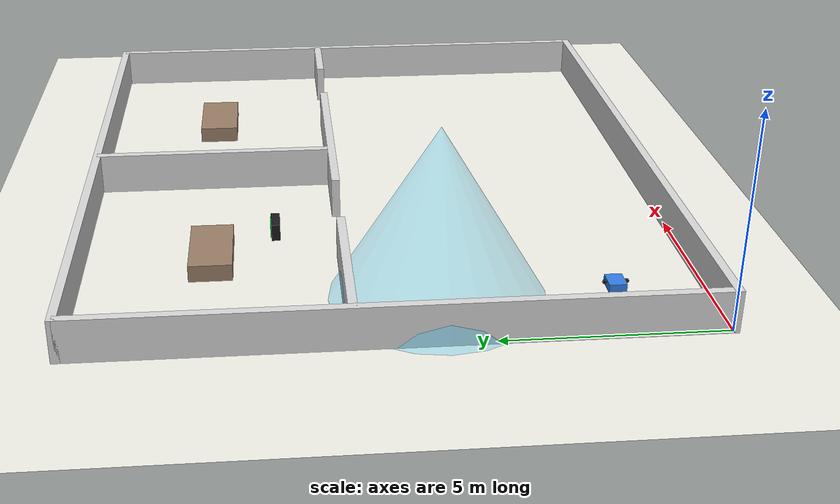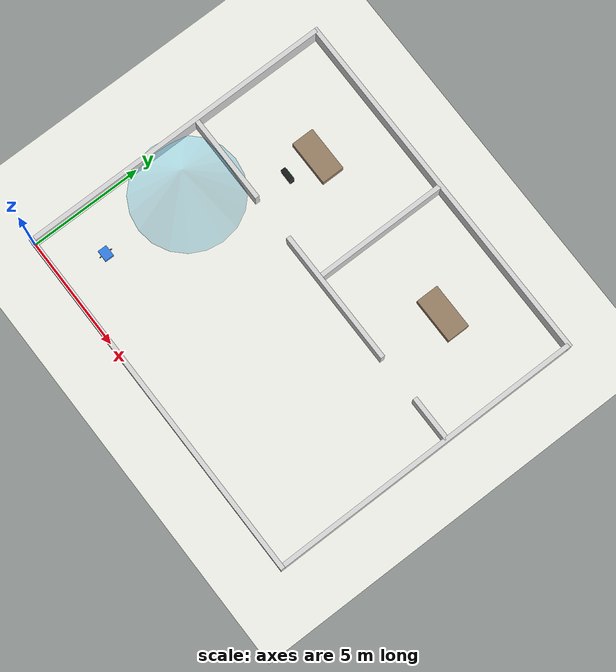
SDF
<?xml version='1.0'?>
<sdf version='1.7'>
  <world name='hospital_world'>
    <plugin filename='libgz-sim-physics-system.so' name='gz::sim::systems::Physics'/>
    <plugin filename='libgz-sim-user-commands-system.so' name='gz::sim::systems::UserCommands'/>
    <plugin filename='libgz-sim-scene-broadcaster-system.so' name='gz::sim::systems::SceneBroadcaster'/>

    <gravity>0 0 -9.81</gravity>

    <light name='sun' type='directional'>
      <pose>8 7 10 0 0 0</pose>
      <diffuse>1 1 1 1</diffuse>
      <specular>0.2 0.2 0.2 1</specular>
      <direction>-0.5 0.1 -1</direction>
    </light>

    <model name='ground_plane'>
      <static>true</static>
      <link name='link'>
        <collision name='collision'>
          <geometry>
            <plane>
              <normal>0 0 1</normal>
              <size>40 40</size>
            </plane>
          </geometry>
        </collision>
        <visual name='visual'>
          <geometry>
            <plane>
              <normal>0 0 1</normal>
              <size>40 40</size>
            </plane>
          </geometry>
          <material>
            <ambient>0.95 0.95 0.92 1</ambient>
            <diffuse>0.95 0.95 0.92 1</diffuse>
          </material>
        </visual>
      </link>
    </model>

    <!-- ===================== Outer walls ===================== -->
    <model name='wall_south'>
      <static>true</static>
      <pose>8 0 0.5 0 0 0</pose>
      <link name='link'>
        <collision name='c'><geometry><box><size>16.2 0.2 1</size></box></geometry></collision>
        <visual name='v'><geometry><box><size>16.2 0.2 1</size></box></geometry>
          <material><ambient>0.85 0.85 0.85 1</ambient><diffuse>0.85 0.85 0.85 1</diffuse></material></visual>
      </link>
    </model>
    <model name='wall_north'>
      <static>true</static>
      <pose>8 14 0.5 0 0 0</pose>
      <link name='link'>
        <collision name='c'><geometry><box><size>16.2 0.2 1</size></box></geometry></collision>
        <visual name='v'><geometry><box><size>16.2 0.2 1</size></box></geometry>
          <material><ambient>0.85 0.85 0.85 1</ambient><diffuse>0.85 0.85 0.85 1</diffuse></material></visual>
      </link>
    </model>
    <model name='wall_west'>
      <static>true</static>
      <pose>0 7 0.5 0 0 0</pose>
      <link name='link'>
        <collision name='c'><geometry><box><size>0.2 14 1</size></box></geometry></collision>
        <visual name='v'><geometry><box><size>0.2 14 1</size></box></geometry>
          <material><ambient>0.85 0.85 0.85 1</ambient><diffuse>0.85 0.85 0.85 1</diffuse></material></visual>
      </link>
    </model>
    <model name='wall_east'>
      <static>true</static>
      <pose>16 7 0.5 0 0 0</pose>
      <link name='link'>
        <collision name='c'><geometry><box><size>0.2 14 1</size></box></geometry></collision>
        <visual name='v'><geometry><box><size>0.2 14 1</size></box></geometry>
          <material><ambient>0.85 0.85 0.85 1</ambient><diffuse>0.85 0.85 0.85 1</diffuse></material></visual>
      </link>
    </model>

    <!-- ============ Corridor / rooms divider at y=8 with 2 doors ============ -->
    <model name='wall_div_seg1'>
      <static>true</static>
      <pose>2 8 0.5 0 0 0</pose>
      <link name='link'>
        <collision name='c'><geometry><box><size>4 0.2 1</size></box></geometry></collision>
        <visual name='v'><geometry><box><size>4 0.2 1</size></box></geometry>
          <material><ambient>0.85 0.85 0.85 1</ambient><diffuse>0.85 0.85 0.85 1</diffuse></material></visual>
      </link>
    </model>
    <model name='wall_div_seg2'>
      <static>true</static>
      <pose>9 8 0.5 0 0 0</pose>
      <link name='link'>
        <collision name='c'><geometry><box><size>6 0.2 1</size></box></geometry></collision>
        <visual name='v'><geometry><box><size>6 0.2 1</size></box></geometry>
          <material><ambient>0.85 0.85 0.85 1</ambient><diffuse>0.85 0.85 0.85 1</diffuse></material></visual>
      </link>
    </model>
    <model name='wall_div_seg3'>
      <static>true</static>
      <pose>15 8 0.5 0 0 0</pose>
      <link name='link'>
        <collision name='c'><geometry><box><size>2 0.2 1</size></box></geometry></collision>
        <visual name='v'><geometry><box><size>2 0.2 1</size></box></geometry>
          <material><ambient>0.85 0.85 0.85 1</ambient><diffuse>0.85 0.85 0.85 1</diffuse></material></visual>
      </link>
    </model>

    <!-- ============ Room divider at x=8 ============ -->
    <model name='wall_room_a_b'>
      <static>true</static>
      <pose>8 11 0.5 0 0 0</pose>
      <link name='link'>
        <collision name='c'><geometry><box><size>0.2 6 1</size></box></geometry></collision>
        <visual name='v'><geometry><box><size>0.2 6 1</size></box></geometry>
          <material><ambient>0.85 0.85 0.85 1</ambient><diffuse>0.85 0.85 0.85 1</diffuse></material></visual>
      </link>
    </model>

    <!-- ============ Beds ============ -->
    <model name='bed_room_a'>
      <static>true</static>
      <pose>4 11 0.2 0 0 0</pose>
      <link name='link'>
        <collision name='c'><geometry><box><size>2 1 0.4</size></box></geometry></collision>
        <visual name='v'><geometry><box><size>2 1 0.4</size></box></geometry>
          <material><ambient>0.6 0.5 0.4 1</ambient><diffuse>0.6 0.5 0.4 1</diffuse></material></visual>
      </link>
    </model>
    <model name='bed_room_b'>
      <static>true</static>
      <pose>12 11 0.2 0 0 0</pose>
      <link name='link'>
        <collision name='c'><geometry><box><size>2 1 0.4</size></box></geometry></collision>
        <visual name='v'><geometry><box><size>2 1 0.4</size></box></geometry>
          <material><ambient>0.6 0.5 0.4 1</ambient><diffuse>0.6 0.5 0.4 1</diffuse></material></visual>
      </link>
    </model>

    <!-- ============ Sensor visuals ============ -->
    <model name='camera_fov'>
      <static>true</static>
      <pose>2 6 1.5 0 0 -1.57</pose>
      <link name='link'>
        <visual name='fov'>
          <geometry>
            <cone>
              <radius>3.0</radius>
              <length>5.0</length>
            </cone>
          </geometry>
          <material>
            <ambient>0.2 0.8 1.0 0.3</ambient>
            <diffuse>0.2 0.8 1.0 0.3</diffuse>
          </material>
          <transparency>0.7</transparency>
        </visual>
      </link>
    </model>

    <model name='heart_monitor'>
      <static>true</static>
      <pose>4 9.5 0.8 0 0 0</pose>
      <link name='link'>
        <visual name='monitor_body'>
          <geometry><box><size>0.6 0.2 0.4</size></box></geometry>
          <material><ambient>0.1 0.1 0.1 1</ambient><diffuse>0.1 0.1 0.1 1</diffuse></material>
        </visual>
        <visual name='monitor_screen'>
          <pose>0.0 0.11 0.0 0 0 0</pose>
          <geometry><box><size>0.5 0.02 0.3</size></box></geometry>
          <material><ambient>0.0 0.8 0.2 1</ambient><diffuse>0.0 0.8 0.2 1</diffuse></material>
        </visual>
      </link>
    </model>

    <!-- ============ Robot (medibot) ============ -->
    <model name='medibot'>
      <pose>2 2 0.1 0 0 0</pose>
      <link name='base_link'>
        <inertial>
          <mass>20.0</mass>
          <inertia><ixx>0.2</ixx><iyy>0.2</iyy><izz>0.2</izz></inertia>
        </inertial>
        <collision name='base_collision'>
          <geometry><box><size>0.5 0.4 0.2</size></box></geometry>
        </collision>
        <visual name='base_visual'>
          <geometry><box><size>0.5 0.4 0.2</size></box></geometry>
          <material><ambient>0.2 0.5 0.9 1</ambient><diffuse>0.2 0.5 0.9 1</diffuse></material>
        </visual>
      </link>

      <link name='left_wheel'>
        <pose>0 0.25 0.05 0 1.5708 0</pose>
        <collision name='c'><geometry><cylinder><radius>0.05</radius><length>0.03</length></cylinder></geometry></collision>
        <visual name='v'><geometry><cylinder><radius>0.05</radius><length>0.03</length></cylinder></geometry>
          <material><ambient>0.1 0.1 0.1 1</ambient><diffuse>0.1 0.1 0.1 1</diffuse></material></visual>
      </link>

      <link name='right_wheel'>
        <pose>0 -0.25 0.05 0 1.5708 0</pose>
        <collision name='c'><geometry><cylinder><radius>0.05</radius><length>0.03</length></cylinder></geometry></collision>
        <visual name='v'><geometry><cylinder><radius>0.05</radius><length>0.03</length></cylinder></geometry>
          <material><ambient>0.1 0.1 0.1 1</ambient><diffuse>0.1 0.1 0.1 1</diffuse></material></visual>
      </link>

      <joint name='left_wheel_joint' type='revolute'>
        <parent>base_link</parent><child>left_wheel</child>
        <axis><xyz>0 1 0</xyz></axis>
      </joint>
      <joint name='right_wheel_joint' type='revolute'>
        <parent>base_link</parent><child>right_wheel</child>
        <axis><xyz>0 1 0</xyz></axis>
      </joint>

      <plugin filename='libgz-sim-diff-drive-system.so' name='gz::sim::systems::DiffDrive'>
        <left_joint>left_wheel_joint</left_joint>
        <right_joint>right_wheel_joint</right_joint>
        <wheel_separation>0.5</wheel_separation>
        <wheel_radius>0.05</wheel_radius>
        <topic>/model/medibot/cmd_vel</topic>
        <odom_topic>/model/medibot/odometry</odom_topic>
        <odom_frame>odom</odom_frame>
        <robot_base_frame>base_link</robot_base_frame>
      </plugin>
    </model>

  </world>
</sdf>
